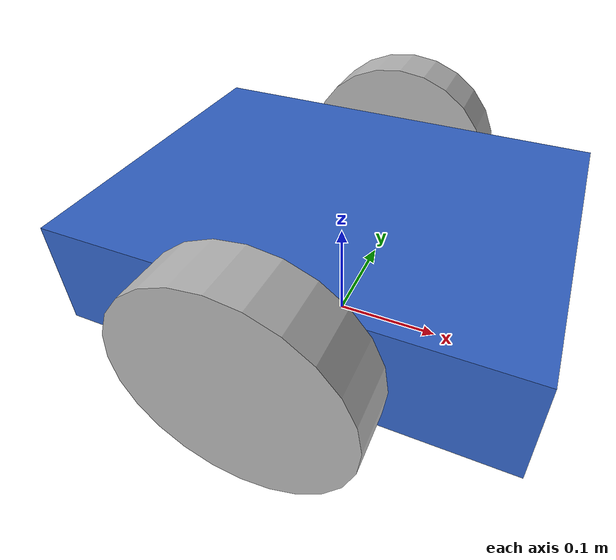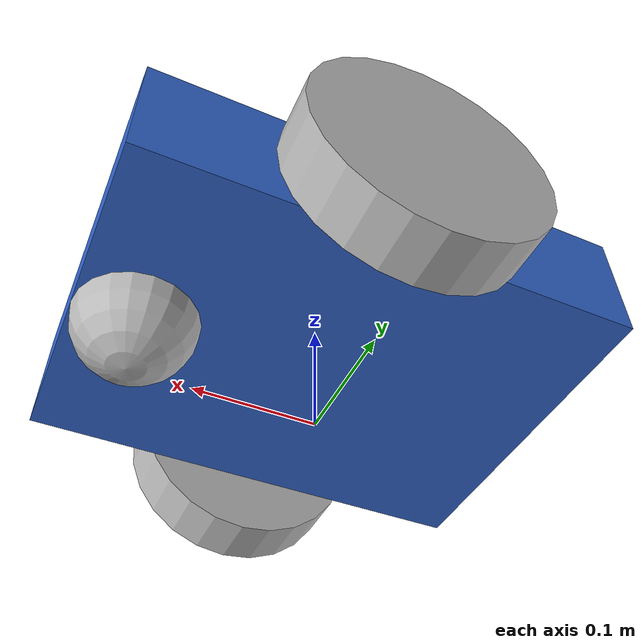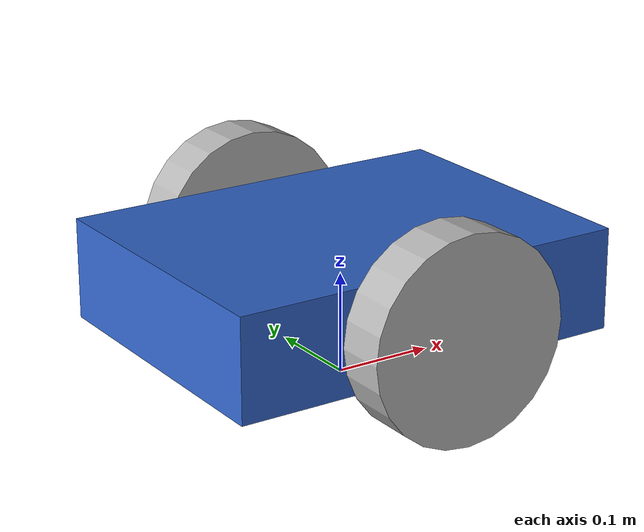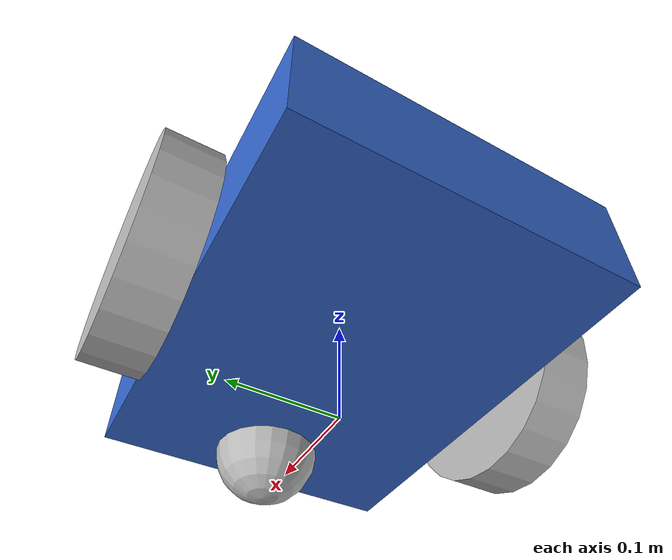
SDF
<?xml version="1.0"?>
<!-- Day 19 - A differential-drive robot. Spawn into a world, bridge /cmd_vel, and drive. -->
<sdf version="1.8">
  <model name="diff_bot">
    <pose>0 0 0.1 0 0 0</pose>

    <!-- chassis -->
    <link name="base_link">
      <inertial>
        <mass>5.0</mass>
        <inertia><ixx>0.1</ixx><iyy>0.1</iyy><izz>0.1</izz>
                 <ixy>0</ixy><ixz>0</ixz><iyz>0</iyz></inertia>
      </inertial>
      <visual name="v">
        <geometry><box><size>0.4 0.3 0.1</size></box></geometry>
        <material><ambient>0.2 0.4 0.8 1</ambient></material>
      </visual>
      <collision name="c">
        <geometry><box><size>0.4 0.3 0.1</size></box></geometry>
      </collision>
    </link>

    <!-- left wheel -->
    <link name="left_wheel">
      <pose>0 0.18 0 -1.5708 0 0</pose>
      <inertial><mass>0.5</mass>
        <inertia><ixx>0.001</ixx><iyy>0.001</iyy><izz>0.001</izz>
                 <ixy>0</ixy><ixz>0</ixz><iyz>0</iyz></inertia></inertial>
      <visual name="v"><geometry><cylinder><radius>0.1</radius><length>0.05</length></cylinder></geometry></visual>
      <collision name="c"><geometry><cylinder><radius>0.1</radius><length>0.05</length></cylinder></geometry></collision>
    </link>
    <joint name="left_wheel_joint" type="revolute">
      <parent>base_link</parent><child>left_wheel</child>
      <axis><xyz>0 1 0</xyz><limit><lower>-1e16</lower><upper>1e16</upper></limit></axis>
    </joint>

    <!-- right wheel -->
    <link name="right_wheel">
      <pose>0 -0.18 0 -1.5708 0 0</pose>
      <inertial><mass>0.5</mass>
        <inertia><ixx>0.001</ixx><iyy>0.001</iyy><izz>0.001</izz>
                 <ixy>0</ixy><ixz>0</ixz><iyz>0</iyz></inertia></inertial>
      <visual name="v"><geometry><cylinder><radius>0.1</radius><length>0.05</length></cylinder></geometry></visual>
      <collision name="c"><geometry><cylinder><radius>0.1</radius><length>0.05</length></cylinder></geometry></collision>
    </link>
    <joint name="right_wheel_joint" type="revolute">
      <parent>base_link</parent><child>right_wheel</child>
      <axis><xyz>0 1 0</xyz><limit><lower>-1e16</lower><upper>1e16</upper></limit></axis>
    </joint>

    <!-- caster (free-rolling sphere) -->
    <link name="caster">
      <pose>0.15 0 -0.05 0 0 0</pose>
      <inertial><mass>0.1</mass>
        <inertia><ixx>0.0001</ixx><iyy>0.0001</iyy><izz>0.0001</izz>
                 <ixy>0</ixy><ixz>0</ixz><iyz>0</iyz></inertia></inertial>
      <visual name="v"><geometry><sphere><radius>0.05</radius></sphere></geometry></visual>
      <collision name="c"><geometry><sphere><radius>0.05</radius></sphere></geometry></collision>
    </link>
    <joint name="caster_joint" type="ball">
      <parent>base_link</parent><child>caster</child>
    </joint>

    <!-- diff-drive plugin: listens on cmd_vel -->
    <plugin filename="gz-sim-diff-drive-system" name="gz::sim::systems::DiffDrive">
      <left_joint>left_wheel_joint</left_joint>
      <right_joint>right_wheel_joint</right_joint>
      <wheel_separation>0.36</wheel_separation>
      <wheel_radius>0.1</wheel_radius>
      <topic>cmd_vel</topic>
      <odom_topic>odom</odom_topic>
    </plugin>
  </model>
</sdf>
